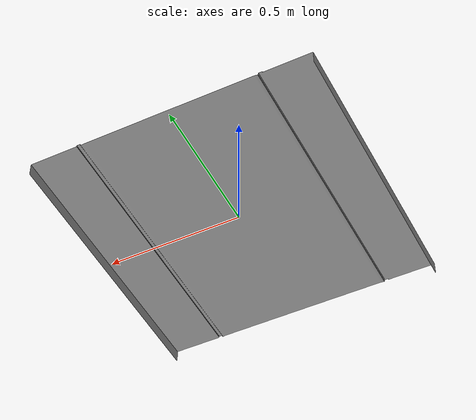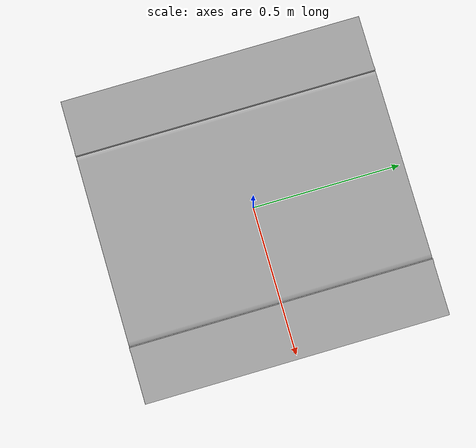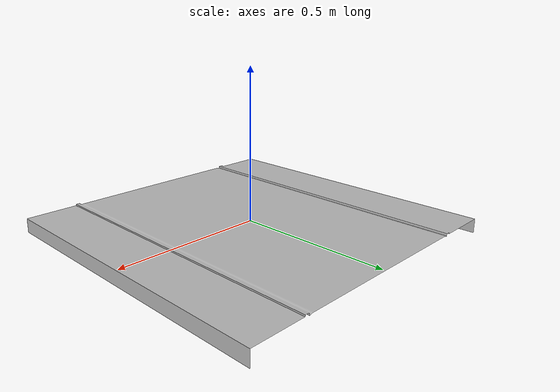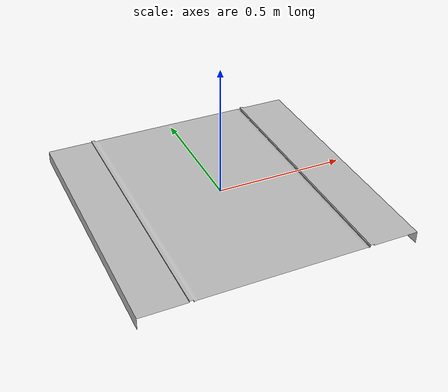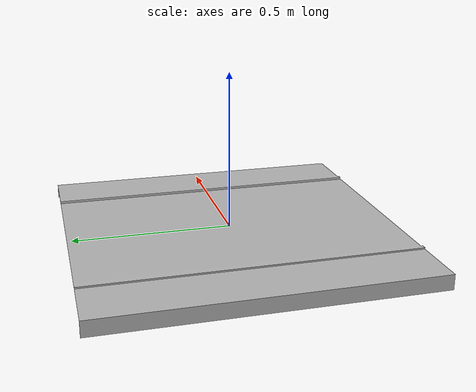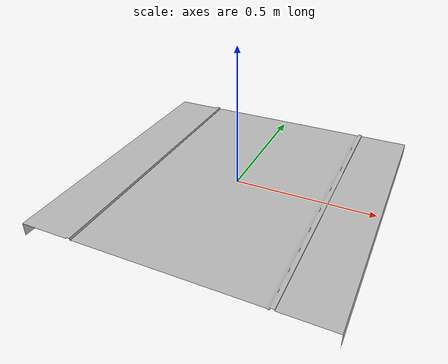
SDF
<?xml version="1.0"?>
<sdf version="1.9">
  <model name="StraightSquare Road">
    <static>true</static>
    <link name="link">
      <collision name="collision">
        <geometry>
          <mesh>
            <scale>0.05 0.05 0.05</scale>
            <uri>model://Circuito/StraightSquare Road/meshes/StraightSquare.dae</uri>
          </mesh>
        </geometry>
      </collision>
      <visual name="road">
        <geometry>
          <mesh>
            <scale>0.05 0.05 0.05</scale>
            <uri>model://Circuito/StraightSquare Road/meshes/StraightSquare.dae</uri>
          </mesh>
        </geometry>
      </visual>
    </link>
  </model>
</sdf>
